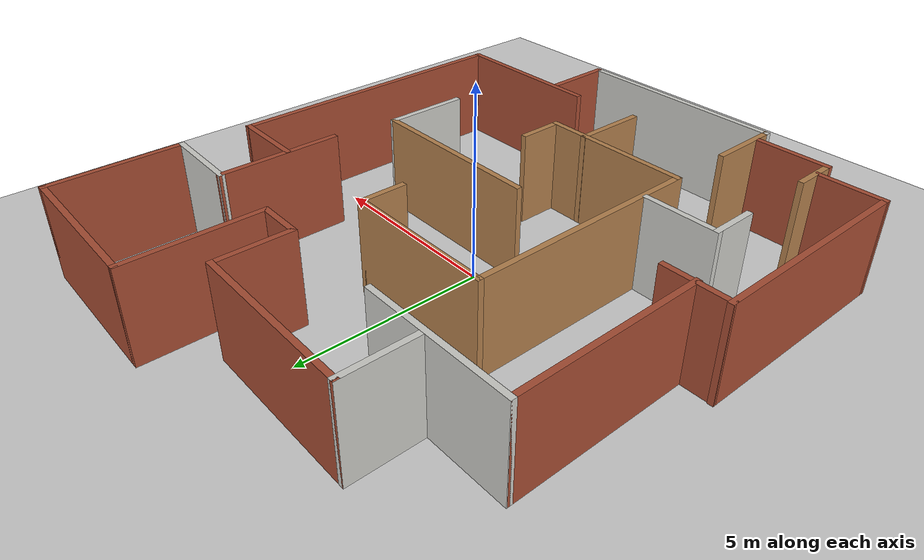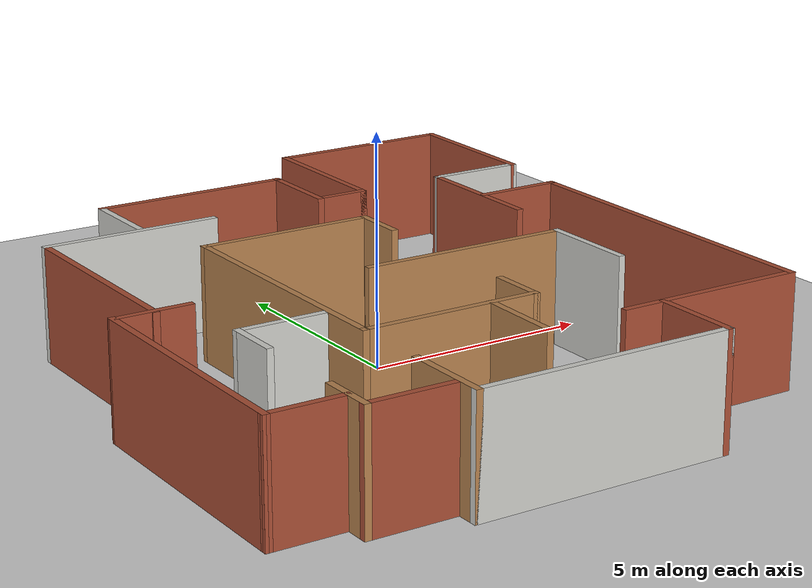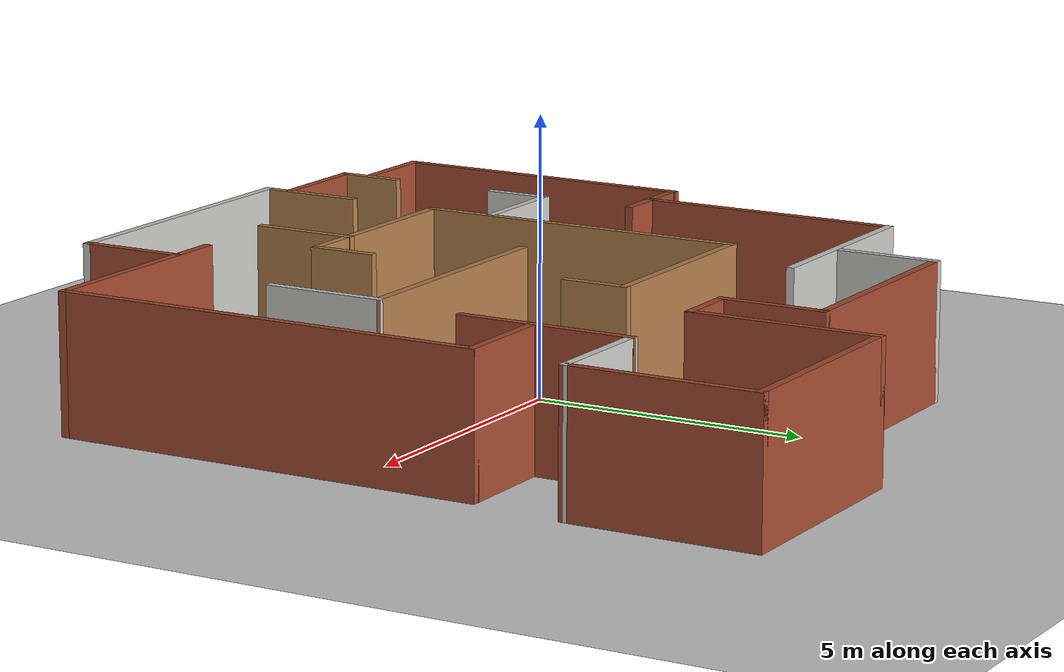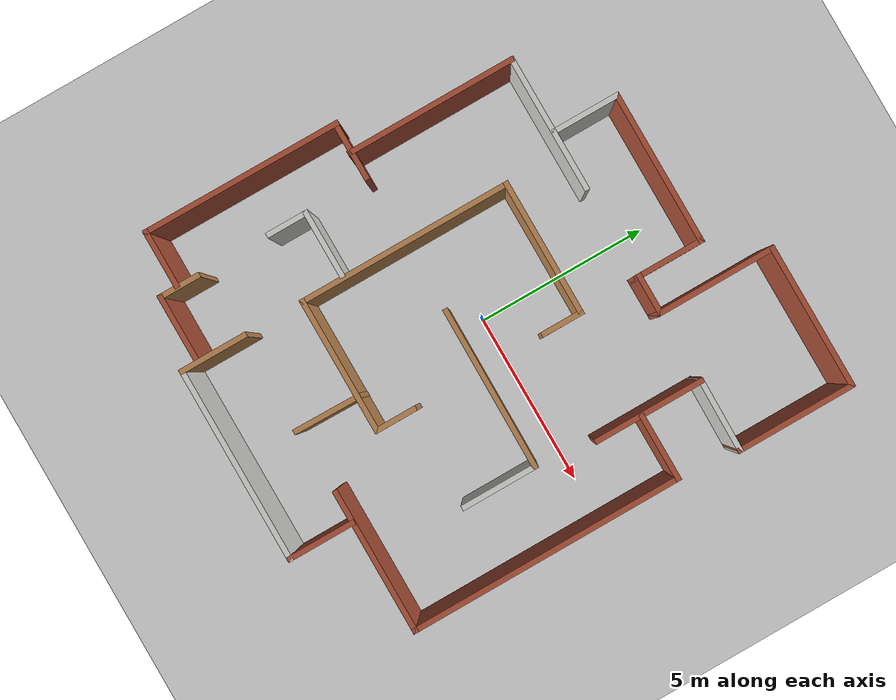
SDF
<sdf version="1.6">
 <world name="default">
  <light name="sun" type="directional">
   <pose>0 0 10 0 -0 0</pose>
   <diffuse>0.8 0.8 0.8 1</diffuse>
   <specular>0.2 0.2 0.2 1</specular>
   <attenuation>
    <range>1000</range>
    <constant>0.9</constant>
    <linear>0.01</linear>
    <quadratic>0.001</quadratic>
   </attenuation>
   <direction>-0.5 0.1 -0.9</direction>
  </light>
  <model name="ground_plane">
   <static>1</static>
   <link name="link">
    <collision name="collision">
     <geometry><plane><normal>0 0 1</normal><size>100 100</size></plane></geometry>
     <surface>
      <contact><collide_bitmask>65535</collide_bitmask></contact>
      <friction><ode><mu>100</mu><mu2>50</mu2></ode></friction>
     </surface>
    </collision>
    <visual name="visual">
     <cast_shadows>0</cast_shadows>
     <geometry><plane><normal>0 0 1</normal><size>100 100</size></plane></geometry>
     <material>
      <script><uri>file://media/materials/scripts/gazebo.material</uri><name>Gazebo/Grey</name></script>
     </material>
    </visual>
   </link>
  </model>
  <gravity>0 0 -9.8</gravity>
  <magnetic_field>6e-06 2.3e-05 -4.2e-05</magnetic_field>
  <atmosphere type="adiabatic"/>
  <physics name="default_physics" default="0" type="ode">
   <max_step_size>0.001</max_step_size>
   <real_time_factor>1</real_time_factor>
   <real_time_update_rate>1000</real_time_update_rate>
  </physics>
  <scene><ambient>0.4 0.4 0.4 1</ambient><background>0.7 0.7 0.7 1</background><shadows>1</shadows></scene>
  <audio><device>default</device></audio>
  <spherical_coordinates>
   <surface_model>EARTH_WGS84</surface_model>
   <latitude_deg>0</latitude_deg>
   <longitude_deg>0</longitude_deg>
   <elevation>0</elevation>
   <heading_deg>0</heading_deg>
  </spherical_coordinates>
  <model name="dat160_w3">
   <link name="Wall_100">
    <collision name="Wall_100_Collision">
     <geometry><box><size>2.25 0.15 2.5</size></box></geometry>
     <pose>0 0 1.25 0 -0 0</pose>
    </collision>
    <visual name="Wall_100_Visual">
     <pose>0 0 1.25 0 -0 0</pose>
     <geometry><box><size>2.25 0.15 2.5</size></box></geometry>
     <material>
      <script><uri>file://media/materials/scripts/gazebo.material</uri><name>Gazebo/CeilingTiled</name></script>
      <ambient>1 1 1 1</ambient>
     </material>
     <meta><layer>0</layer></meta>
    </visual>
    <pose>3.9989 -1.79135 0 0 -0 -1.5708</pose>
   </link>
   <link name="Wall_102">
    <collision name="Wall_102_Collision">
     <geometry><box><size>1.97359 0.15 2.5</size></box></geometry>
     <pose>0 0 1.25 0 -0 0</pose>
    </collision>
    <visual name="Wall_102_Visual">
     <pose>0 0 1.25 0 -0 0</pose>
     <geometry><box><size>1.97359 0.15 2.5</size></box></geometry>
     <material>
      <script><uri>file://media/materials/scripts/gazebo.material</uri><name>Gazebo/Wood</name></script>
      <ambient>1 1 1 1</ambient>
     </material>
     <meta><layer>0</layer></meta>
    </visual>
    <pose>0.133556 -4.7191 0 0 -0 -1.58538</pose>
   </link>
   <link name="Wall_107">
    <collision name="Wall_107_Collision">
     <geometry><box><size>4.25 0.15 2.5</size></box></geometry>
     <pose>0 0 1.25 0 -0 0</pose>
    </collision>
    <visual name="Wall_107_Visual">
     <pose>0 0 1.25 0 -0 0</pose>
     <geometry><box><size>4.25 0.15 2.5</size></box></geometry>
     <material>
      <script><uri>file://media/materials/scripts/gazebo.material</uri><name>Gazebo/Bricks</name></script>
      <ambient>1 1 1 1</ambient>
     </material>
     <meta><layer>0</layer></meta>
    </visual>
    <pose>4.06989 -5.53935 0 0 -0 3.14159</pose>
   </link>
   <link name="Wall_11">
    <collision name="Wall_11_Collision">
     <geometry><box><size>4.77349 0.15 2.5</size></box></geometry>
     <pose>0 0 1.25 0 -0 0</pose>
    </collision>
    <visual name="Wall_11_Visual">
     <pose>0 0 1.25 0 -0 0</pose>
     <geometry><box><size>4.77349 0.15 2.5</size></box></geometry>
     <material>
      <script><uri>file://media/materials/scripts/gazebo.material</uri><name>Gazebo/Wood</name></script>
      <ambient>1 1 1 1</ambient>
     </material>
     <meta><layer>0</layer></meta>
    </visual>
    <pose>1.68718 -0.731562 0 0 -0 -0.004233</pose>
   </link>
   <link name="Wall_110">
    <collision name="Wall_110_Collision">
     <geometry><box><size>5.75 0.15 2.5</size></box></geometry>
     <pose>0 0 1.25 0 -0 0</pose>
    </collision>
    <visual name="Wall_110_Visual">
     <pose>0 0 1.25 0 -0 0</pose>
     <geometry><box><size>5.75 0.15 2.5</size></box></geometry>
     <material>
      <script><uri>file://media/materials/scripts/gazebo.material</uri><name>Gazebo/CeilingTiled</name></script>
      <ambient>1 1 1 1</ambient>
     </material>
     <meta><layer>0</layer></meta>
    </visual>
    <pose>0.100635 -7.41595 0 0 -0 0</pose>
   </link>
   <link name="Wall_111">
    <collision name="Wall_111_Collision">
     <geometry><box><size>2 0.15 2.5</size></box></geometry>
     <pose>0 0 1.25 0 -0 0</pose>
    </collision>
    <visual name="Wall_111_Visual">
     <pose>0 0 1.25 0 -0 0</pose>
     <geometry><box><size>2 0.15 2.5</size></box></geometry>
     <material>
      <script><uri>file://media/materials/scripts/gazebo.material</uri><name>Gazebo/Bricks</name></script>
      <ambient>1 1 1 1</ambient>
     </material>
     <meta><layer>0</layer></meta>
    </visual>
    <pose>2.90063 -6.49095 0 0 -0 1.5708</pose>
   </link>
   <link name="Wall_113">
    <collision name="Wall_113_Collision">
     <geometry><box><size>2 0.15 2.5</size></box></geometry>
     <pose>0 0 1.25 0 -0 0</pose>
    </collision>
    <visual name="Wall_113_Visual">
     <pose>0 0 1.25 0 -0 0</pose>
     <geometry><box><size>2 0.15 2.5</size></box></geometry>
     <material>
      <script><uri>file://media/materials/scripts/gazebo.material</uri><name>Gazebo/Wood</name></script>
      <ambient>1 1 1 1</ambient>
     </material>
     <meta><layer>0</layer></meta>
    </visual>
    <pose>-2.69936 -6.49095 0 0 -0 1.5708</pose>
   </link>
   <link name="Wall_115">
    <collision name="Wall_115_Collision">
     <geometry><box><size>2 0.15 2.5</size></box></geometry>
     <pose>0 0 1.25 0 -0 0</pose>
    </collision>
    <visual name="Wall_115_Visual">
     <pose>0 0 1.25 0 -0 0</pose>
     <geometry><box><size>2 0.15 2.5</size></box></geometry>
     <material>
      <script><uri>file://media/materials/scripts/gazebo.material</uri><name>Gazebo/CeilingTiled</name></script>
      <ambient>1 1 1 1</ambient>
     </material>
     <meta><layer>0</layer></meta>
    </visual>
    <pose>-3.72067 -2.59566 0 0 -0 3.14159</pose>
   </link>
   <link name="Wall_117">
    <collision name="Wall_117_Collision">
     <geometry><box><size>2 0.15 2.5</size></box></geometry>
     <pose>0 0 1.25 0 -0 0</pose>
    </collision>
    <visual name="Wall_117_Visual">
     <pose>0 0 1.25 0 -0 0</pose>
     <geometry><box><size>2 0.15 2.5</size></box></geometry>
     <material>
      <script><uri>file://media/materials/scripts/gazebo.material</uri><name>Gazebo/Bricks</name></script>
      <ambient>1 1 1 1</ambient>
     </material>
     <meta><layer>0</layer></meta>
    </visual>
    <pose>-3.72067 -6.94566 0 0 -0 0</pose>
   </link>
   <link name="Wall_119">
    <collision name="Wall_119_Collision">
     <geometry><box><size>1.25 0.15 2.5</size></box></geometry>
     <pose>0 0 1.25 0 -0 0</pose>
    </collision>
    <visual name="Wall_119_Visual">
     <pose>0 0 1.25 0 -0 0</pose>
     <geometry><box><size>1.25 0.15 2.5</size></box></geometry>
     <material>
      <script><uri>file://media/materials/scripts/gazebo.material</uri><name>Gazebo/CeilingTiled</name></script>
      <ambient>1 1 1 1</ambient>
     </material>
     <meta><layer>0</layer></meta>
    </visual>
    <pose>-4.64567 -3.14566 0 0 -0 -1.5708</pose>
   </link>
   <link name="Wall_124">
    <collision name="Wall_124_Collision">
     <geometry><box><size>1.25 0.15 2.5</size></box></geometry>
     <pose>0 0 1.25 0 -0 0</pose>
    </collision>
    <visual name="Wall_124_Visual">
     <pose>0 0 1.25 0 -0 0</pose>
     <geometry><box><size>1.25 0.15 2.5</size></box></geometry>
     <material>
      <script><uri>file://media/materials/scripts/gazebo.material</uri><name>Gazebo/Wood</name></script>
      <ambient>1 1 1 1</ambient>
     </material>
     <meta><layer>0</layer></meta>
    </visual>
    <pose>-4.64567 -6.39566 0 0 -0 1.5708</pose>
   </link>
   <link name="Wall_126">
    <collision name="Wall_126_Collision">
     <geometry><box><size>1.75 0.15 2.5</size></box></geometry>
     <pose>0 0 1.25 0 -0 0</pose>
    </collision>
    <visual name="Wall_126_Visual">
     <pose>0 0 1.25 0 -0 0</pose>
     <geometry><box><size>1.75 0.15 2.5</size></box></geometry>
     <material>
      <script><uri>file://media/materials/scripts/gazebo.material</uri><name>Gazebo/Bricks</name></script>
      <ambient>1 1 1 1</ambient>
     </material>
     <meta><layer>0</layer></meta>
    </visual>
    <pose>-5.49238 -6.43534 0 0 -0 3.14159</pose>
   </link>
   <link name="Wall_127">
    <collision name="Wall_127_Collision">
     <geometry><box><size>5.82831 0.15 2.5</size></box></geometry>
     <pose>0 0 1.25 0 -0 0</pose>
    </collision>
    <visual name="Wall_127_Visual">
     <pose>0 0 1.25 0 -0 0</pose>
     <geometry><box><size>5.82831 0.15 2.5</size></box></geometry>
     <material>
      <script><uri>file://media/materials/scripts/gazebo.material</uri><name>Gazebo/Bricks</name></script>
      <ambient>1 1 1 1</ambient>
     </material>
     <meta><layer>0</layer></meta>
    </visual>
    <pose>-6.28082 -3.59621 0 0 -0 1.56672</pose>
   </link>
   <link name="Wall_128">
    <collision name="Wall_128_Collision">
     <geometry><box><size>1.75 0.15 2.5</size></box></geometry>
     <pose>0 0 1.25 0 -0 0</pose>
    </collision>
    <visual name="Wall_128_Visual">
     <pose>0 0 1.25 0 -0 0</pose>
     <geometry><box><size>1.75 0.15 2.5</size></box></geometry>
     <material>
      <script><uri>file://media/materials/scripts/gazebo.material</uri><name>Gazebo/Bricks</name></script>
      <ambient>1 1 1 1</ambient>
     </material>
     <meta><layer>0</layer></meta>
    </visual>
    <pose>-5.46925 -0.780208 0 0 -0 0</pose>
   </link>
   <link name="Wall_130">
    <collision name="Wall_130_Collision">
     <geometry><box><size>4.96261 0.15 2.5</size></box></geometry>
     <pose>0 0 1.25 0 -0 0</pose>
    </collision>
    <visual name="Wall_130_Visual">
     <pose>0 0 1.25 0 -0 0</pose>
     <geometry><box><size>4.96261 0.15 2.5</size></box></geometry>
     <material>
      <script><uri>file://media/materials/scripts/gazebo.material</uri><name>Gazebo/Bricks</name></script>
      <ambient>1 1 1 1</ambient>
     </material>
     <meta><layer>0</layer></meta>
    </visual>
    <pose>-5.43256 1.5917 0 0 -0 1.5708</pose>
   </link>
   <link name="Wall_131">
    <collision name="Wall_131_Collision">
     <geometry><box><size>4 0.15 2.5</size></box></geometry>
     <pose>0 0 1.25 0 -0 0</pose>
    </collision>
    <visual name="Wall_131_Visual">
     <pose>0 0 1.25 0 -0 0</pose>
     <geometry><box><size>4 0.15 2.5</size></box></geometry>
     <material>
      <script><uri>file://media/materials/scripts/gazebo.material</uri><name>Gazebo/CeilingTiled</name></script>
      <ambient>1 1 1 1</ambient>
     </material>
     <meta><layer>0</layer></meta>
    </visual>
    <pose>-3.50757 4.02114 0 0 -0 0</pose>
   </link>
   <link name="Wall_133">
    <collision name="Wall_133_Collision">
     <geometry><box><size>2 0.15 2.5</size></box></geometry>
     <pose>0 0 1.25 0 -0 0</pose>
    </collision>
    <visual name="Wall_133_Visual">
     <pose>0 0 1.25 0 -0 0</pose>
     <geometry><box><size>2 0.15 2.5</size></box></geometry>
     <material>
      <script><uri>file://media/materials/scripts/gazebo.material</uri><name>Gazebo/CeilingTiled</name></script>
      <ambient>1 1 1 1</ambient>
     </material>
     <meta><layer>0</layer></meta>
    </visual>
    <pose>-3.25829 4.99095 0 0 -0 1.5708</pose>
   </link>
   <link name="Wall_135">
    <collision name="Wall_135_Collision">
     <geometry><box><size>4.5 0.15 2.5</size></box></geometry>
     <pose>0 0 1.25 0 -0 0</pose>
    </collision>
    <visual name="Wall_135_Visual">
     <pose>0 0 1.25 0 -0 0</pose>
     <geometry><box><size>4.5 0.15 2.5</size></box></geometry>
     <material>
      <script><uri>file://media/materials/scripts/gazebo.material</uri><name>Gazebo/Bricks</name></script>
      <ambient>1 1 1 1</ambient>
     </material>
     <meta><layer>0</layer></meta>
    </visual>
    <pose>-1.08329 5.91595 0 0 -0 0</pose>
   </link>
   <link name="Wall_136">
    <collision name="Wall_136_Collision">
     <geometry><box><size>2 0.15 2.5</size></box></geometry>
     <pose>0 0 1.25 0 -0 0</pose>
    </collision>
    <visual name="Wall_136_Visual">
     <pose>0 0 1.25 0 -0 0</pose>
     <geometry><box><size>2 0.15 2.5</size></box></geometry>
     <material>
      <script><uri>file://media/materials/scripts/gazebo.material</uri><name>Gazebo/Bricks</name></script>
      <ambient>1 1 1 1</ambient>
     </material>
     <meta><layer>0</layer></meta>
    </visual>
    <pose>1.09171 4.99095 0 0 -0 -1.5708</pose>
   </link>
   <link name="Wall_137">
    <collision name="Wall_137_Collision">
     <geometry><box><size>1.25 0.15 2.5</size></box></geometry>
     <pose>0 0 1.25 0 -0 0</pose>
    </collision>
    <visual name="Wall_137_Visual">
     <pose>0 0 1.25 0 -0 0</pose>
     <geometry><box><size>1.25 0.15 2.5</size></box></geometry>
     <material>
      <script><uri>file://media/materials/scripts/gazebo.material</uri><name>Gazebo/Bricks</name></script>
      <ambient>1 1 1 1</ambient>
     </material>
     <meta><layer>0</layer></meta>
    </visual>
    <pose>1.64171 4.06595 0 0 -0 0</pose>
   </link>
   <link name="Wall_138">
    <collision name="Wall_138_Collision">
     <geometry><box><size>3.5 0.15 2.5</size></box></geometry>
     <pose>0 0 1.25 0 -0 0</pose>
    </collision>
    <visual name="Wall_138_Visual">
     <pose>0 0 1.25 0 -0 0</pose>
     <geometry><box><size>3.5 0.15 2.5</size></box></geometry>
     <material>
      <script><uri>file://media/materials/scripts/gazebo.material</uri><name>Gazebo/Bricks</name></script>
      <ambient>1 1 1 1</ambient>
     </material>
     <meta><layer>0</layer></meta>
    </visual>
    <pose>2.19171 5.74095 0 0 -0 1.5708</pose>
   </link>
   <link name="Wall_139">
    <collision name="Wall_139_Collision">
     <geometry><box><size>4.25 0.15 2.5</size></box></geometry>
     <pose>0 0 1.25 0 -0 0</pose>
    </collision>
    <visual name="Wall_139_Visual">
     <pose>0 0 1.25 0 -0 0</pose>
     <geometry><box><size>4.25 0.15 2.5</size></box></geometry>
     <material>
      <script><uri>file://media/materials/scripts/gazebo.material</uri><name>Gazebo/Bricks</name></script>
      <ambient>1 1 1 1</ambient>
     </material>
     <meta><layer>0</layer></meta>
    </visual>
    <pose>4.24171 7.41595 0 0 -0 0</pose>
   </link>
   <link name="Wall_140">
    <collision name="Wall_140_Collision">
     <geometry><box><size>3.5 0.15 2.5</size></box></geometry>
     <pose>0 0 1.25 0 -0 0</pose>
    </collision>
    <visual name="Wall_140_Visual">
     <pose>0 0 1.25 0 -0 0</pose>
     <geometry><box><size>3.5 0.15 2.5</size></box></geometry>
     <material>
      <script><uri>file://media/materials/scripts/gazebo.material</uri><name>Gazebo/Bricks</name></script>
      <ambient>1 1 1 1</ambient>
     </material>
     <meta><layer>0</layer></meta>
    </visual>
    <pose>6.29171 5.74095 0 0 -0 -1.5708</pose>
   </link>
   <link name="Wall_141">
    <collision name="Wall_141_Collision">
     <geometry><box><size>2.20197 0.15 2.5</size></box></geometry>
     <pose>0 0 1.25 0 -0 0</pose>
    </collision>
    <visual name="Wall_141_Visual">
     <pose>0 0 1.25 0 -0 0</pose>
     <geometry><box><size>2.20197 0.15 2.5</size></box></geometry>
     <material>
      <script><uri>file://media/materials/scripts/gazebo.material</uri><name>Gazebo/CeilingTiled</name></script>
      <ambient>1 1 1 1</ambient>
     </material>
     <meta><layer>0</layer></meta>
    </visual>
    <pose>5.26581 4.07941 0 0 -0 3.12848</pose>
   </link>
   <link name="Wall_3">
    <collision name="Wall_3_Collision">
     <geometry><box><size>4 0.15 2.5</size></box></geometry>
     <pose>0 0 1.25 0 -0 0</pose>
    </collision>
    <visual name="Wall_3_Visual">
     <pose>0 0 1.25 0 -0 0</pose>
     <geometry><box><size>4 0.15 2.5</size></box></geometry>
     <material>
      <script><uri>file://media/materials/scripts/gazebo.material</uri><name>Gazebo/Wood</name></script>
      <ambient>1 1 1 1</ambient>
     </material>
     <meta><layer>0</layer></meta>
    </visual>
    <pose>-0.774365 2.28405 0 0 -0 0</pose>
   </link>
   <link name="Wall_5">
    <collision name="Wall_5_Collision">
     <geometry><box><size>6.25 0.15 2.5</size></box></geometry>
     <pose>0 0 1.25 0 -0 0</pose>
    </collision>
    <visual name="Wall_5_Visual">
     <pose>0 0 1.25 0 -0 0</pose>
     <geometry><box><size>6.25 0.15 2.5</size></box></geometry>
     <material>
      <script><uri>file://media/materials/scripts/gazebo.material</uri><name>Gazebo/Wood</name></script>
      <ambient>1 1 1 1</ambient>
     </material>
     <meta><layer>0</layer></meta>
    </visual>
    <pose>-2.69936 -0.765954 0 0 -0 -1.5708</pose>
   </link>
   <link name="Wall_6">
    <collision name="Wall_6_Collision">
     <geometry><box><size>4 0.15 2.5</size></box></geometry>
     <pose>0 0 1.25 0 -0 0</pose>
    </collision>
    <visual name="Wall_6_Visual">
     <pose>0 0 1.25 0 -0 0</pose>
     <geometry><box><size>4 0.15 2.5</size></box></geometry>
     <material>
      <script><uri>file://media/materials/scripts/gazebo.material</uri><name>Gazebo/Wood</name></script>
      <ambient>1 1 1 1</ambient>
     </material>
     <meta><layer>0</layer></meta>
    </visual>
    <pose>-0.774365 -3.81595 0 0 -0 0</pose>
   </link>
   <link name="Wall_7">
    <collision name="Wall_7_Collision">
     <geometry><box><size>1.25 0.15 2.5</size></box></geometry>
     <pose>0 0 1.25 0 -0 0</pose>
    </collision>
    <visual name="Wall_7_Visual">
     <pose>0 0 1.25 0 -0 0</pose>
     <geometry><box><size>1.25 0.15 2.5</size></box></geometry>
     <material>
      <script><uri>file://media/materials/scripts/gazebo.material</uri><name>Gazebo/Wood</name></script>
      <ambient>1 1 1 1</ambient>
     </material>
     <meta><layer>0</layer></meta>
    </visual>
    <pose>1.15064 -3.26595 0 0 -0 1.5708</pose>
   </link>
   <link name="Wall_9">
    <collision name="Wall_9_Collision">
     <geometry><box><size>1.25 0.15 2.5</size></box></geometry>
     <pose>0 0 1.25 0 -0 0</pose>
    </collision>
    <visual name="Wall_9_Visual">
     <pose>0 0 1.25 0 -0 0</pose>
     <geometry><box><size>1.25 0.15 2.5</size></box></geometry>
     <material>
      <script><uri>file://media/materials/scripts/gazebo.material</uri><name>Gazebo/Wood</name></script>
      <ambient>1 1 1 1</ambient>
     </material>
     <meta><layer>0</layer></meta>
    </visual>
    <pose>1.15064 1.73405 0 0 -0 -1.5708</pose>
   </link>
   <link name="Wall_95">
    <collision name="Wall_95_Collision">
     <geometry><box><size>3.25 0.15 2.5</size></box></geometry>
     <pose>0 0 1.25 0 -0 0</pose>
    </collision>
    <visual name="Wall_95_Visual">
     <pose>0 0 1.25 0 -0 0</pose>
     <geometry><box><size>3.25 0.15 2.5</size></box></geometry>
     <material>
      <script><uri>file://media/materials/scripts/gazebo.material</uri><name>Gazebo/Bricks</name></script>
      <ambient>1 1 1 1</ambient>
     </material>
     <meta><layer>0</layer></meta>
    </visual>
    <pose>4.23992 2.54286 0 0 -0 -1.5708</pose>
   </link>
   <link name="Wall_97">
    <collision name="Wall_97_Collision">
     <geometry><box><size>2 0.15 2.5</size></box></geometry>
     <pose>0 0 1.25 0 -0 0</pose>
    </collision>
    <visual name="Wall_97_Visual">
     <pose>0 0 1.25 0 -0 0</pose>
     <geometry><box><size>2 0.15 2.5</size></box></geometry>
     <material>
      <script><uri>file://media/materials/scripts/gazebo.material</uri><name>Gazebo/Bricks</name></script>
      <ambient>1 1 1 1</ambient>
     </material>
     <meta><layer>0</layer></meta>
    </visual>
    <pose>5.19489 2.31065 0 0 -0 0</pose>
   </link>
   <link name="Wall_98">
    <collision name="Wall_98_Collision">
     <geometry><box><size>8 0.15 2.5</size></box></geometry>
     <pose>0 0 1.25 0 -0 0</pose>
    </collision>
    <visual name="Wall_98_Visual">
     <pose>0 0 1.25 0 -0 0</pose>
     <geometry><box><size>8 0.15 2.5</size></box></geometry>
     <material>
      <script><uri>file://media/materials/scripts/gazebo.material</uri><name>Gazebo/Bricks</name></script>
      <ambient>1 1 1 1</ambient>
     </material>
     <meta><layer>0</layer></meta>
    </visual>
    <pose>6.11989 -1.61435 0 0 -0 -1.5708</pose>
   </link>
   <static>1</static>
  </model>
 </world>
</sdf>
